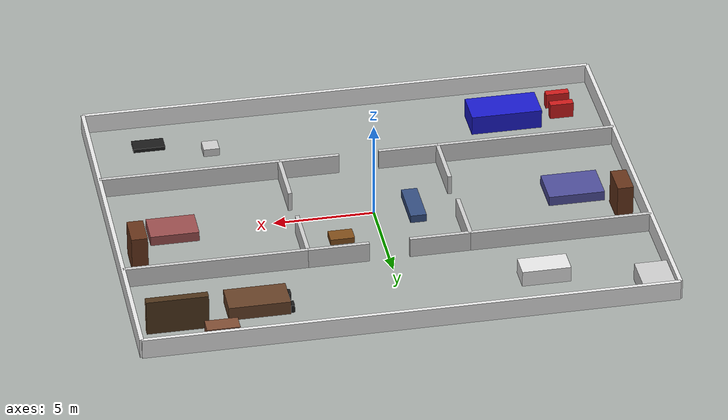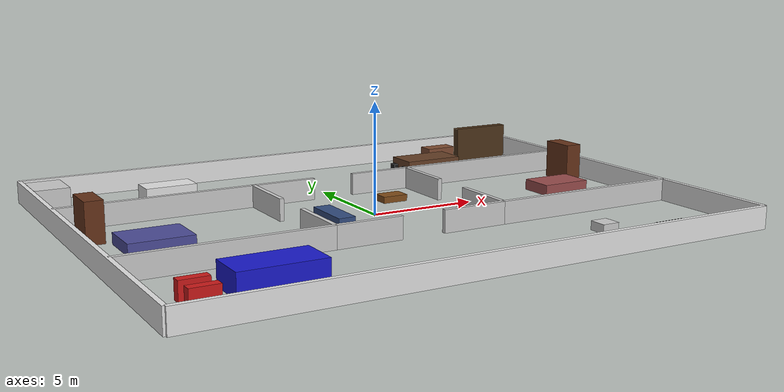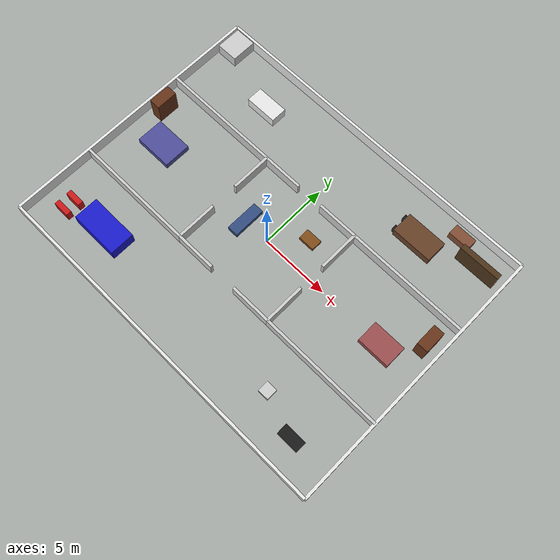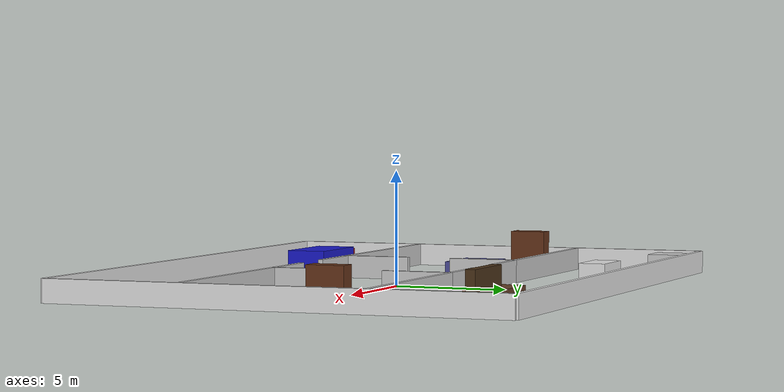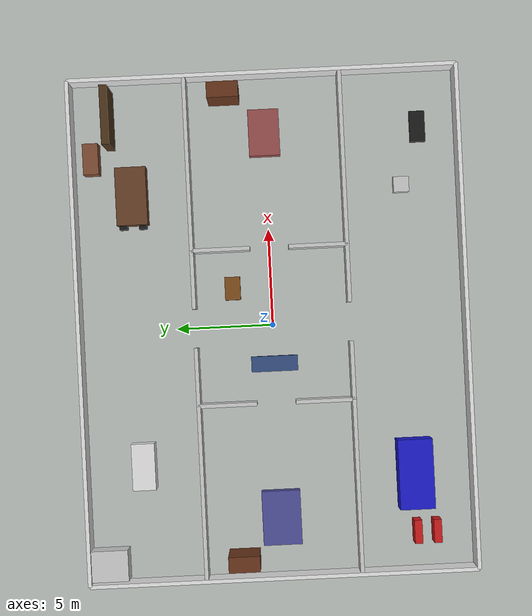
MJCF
<mujoco model="clean_home_environment">
    <asset>
        <texture name="skybox" type="skybox" builtin="gradient" rgb1=".3 .5 .7" rgb2="0 0 0" width="512" height="512"/>
        <texture name="grid" type="2d" builtin="checker" rgb1=".1 .2 .3" rgb2=".2 .3 .4" width="300" height="300" mark="edge" markrgb=".8 .8 .8"/>
        <material name="grid" texture="grid" texrepeat="1 1" texuniform="true"/>
    </asset>

    <worldbody>
        <!-- EXTERIOR WALLS (26x20m) -->
        <geom name="wall_n" type="box" pos="0 10 0.5" size="13 0.1 0.5" rgba="0.9 0.9 0.9 1"/>
        <geom name="wall_s" type="box" pos="0 -10 0.5" size="13 0.1 0.5" rgba="0.9 0.9 0.9 1"/>
        <geom name="wall_e" type="box" pos="13 0 0.5" size="0.1 10 0.5" rgba="0.9 0.9 0.9 1"/>
        <geom name="wall_w" type="box" pos="-13 0 0.5" size="0.1 10 0.5" rgba="0.9 0.9 0.9 1"/>

        <!-- INTERIOR WALLS WITH GATES -->
        <geom name="wall_lv_w_1" type="box" pos="-4 -2.5 0.5" size="0.1 1.5 0.5" rgba="0.8 0.8 0.8 1"/>
        <geom name="wall_lv_w_2" type="box" pos="-4 2.5 0.5" size="0.1 1.5 0.5" rgba="0.8 0.8 0.8 1"/>
        <geom name="wall_lv_e_1" type="box" pos="4 -2.5 0.5" size="0.1 1.5 0.5" rgba="0.8 0.8 0.8 1"/>
        <geom name="wall_lv_e_2" type="box" pos="4 2.5 0.5" size="0.1 1.5 0.5" rgba="0.8 0.8 0.8 1"/>
        <geom name="wall_lv_n_1" type="box" pos="-2.5 4 0.5" size="1.5 0.1 0.5" rgba="0.8 0.8 0.8 1"/>
        <geom name="wall_lv_n_2" type="box" pos="2.5 4 0.5" size="1.5 0.1 0.5" rgba="0.8 0.8 0.8 1"/>
        <geom name="wall_lv_s_1" type="box" pos="-2.5 -4 0.5" size="1.5 0.1 0.5" rgba="0.8 0.8 0.8 1"/>
        <geom name="wall_lv_s_2" type="box" pos="2.5 -4 0.5" size="1.5 0.1 0.5" rgba="0.8 0.8 0.8 1"/>

        <geom name="wall_kit_h" type="box" pos="-8.5 4 0.5" size="4.5 0.1 0.5" rgba="0.8 0.8 0.8 1"/>
        <geom name="wall_lib_h" type="box" pos="8.5 4 0.5" size="4.5 0.1 0.5" rgba="0.8 0.8 0.8 1"/>
        <geom name="wall_gym_h" type="box" pos="8.5 -4 0.5" size="4.5 0.1 0.5" rgba="0.8 0.8 0.8 1"/>
        <geom name="wall_master_h" type="box" pos="-8.5 -4 0.5" size="4.5 0.1 0.5" rgba="0.8 0.8 0.8 1"/>

        <!-- CLEAN ARRANGEMENT OF FURNITURE -->

        <!-- 1. LIVING ROOM -->
        <body name="sofa" pos="-2 0 0.2"><geom type="box" size="0.4 1.2 0.2" rgba="0.2 0.3 0.5 1"/></body>
        <body name="lv_table" pos="2 2 0.15"><geom type="box" size="0.6 0.4 0.15" rgba="0.5 0.3 0.1 1"/></body>

        <!-- 2. KITCHEN (Top-Left) -->
        <body name="island" pos="-7 7 0.4"><geom type="box" size="1.2 0.6 0.4" rgba="0.9 0.9 0.9 1"/></body>
        <body name="kitchen_counter" pos="-12 9 0.45"><geom type="box" size="0.8 1.0 0.45" rgba="0.8 0.8 0.8 1"/></body>

        <!-- 3. DINING ROOM (Top-Right) -->
        <body name="dining_table" pos="7 7 0.35"><geom type="box" size="1.5 0.8 0.35" rgba="0.4 0.25 0.15 1"/></body>
        <body name="chair_d1" pos="5.5 7.5 0.2"><geom type="box" size="0.2 0.2 0.2" rgba="0.1 0.1 0.1 1"/></body>
        <body name="chair_d2" pos="5.5 6.5 0.2"><geom type="box" size="0.2 0.2 0.2" rgba="0.1 0.1 0.1 1"/></body>

        <!-- 4. MASTER BEDROOM (West) -->
        <body name="bed_m" pos="-10 0 0.25"><geom type="box" size="1.4 1.0 0.25" rgba="0.3 0.3 0.6 1"/></body>
        <body name="almirah_m" pos="-12 2 0.9"><geom type="box" size="0.4 0.8 0.9" rgba="0.4 0.2 0.1 1"/></body>

        <!-- 5. GUEST BEDROOM (East) -->
        <body name="bed_g" pos="10 0 0.25"><geom type="box" size="1.2 0.8 0.25" rgba="0.6 0.3 0.3 1"/></body>
        <body name="almirah_g" pos="12 2 0.9"><geom type="box" size="0.4 0.8 0.9" rgba="0.4 0.2 0.1 1"/></body>

        <!-- 6. LIBRARY (North-East) -->
        <body name="shelf_1" pos="11 8 0.9"><geom type="box" size="1.5 0.2 0.9" rgba="0.3 0.2 0.1 1"/></body>
        <body name="study_desk" pos="9 9 0.35"><geom type="box" size="0.8 0.4 0.35" rgba="0.5 0.3 0.2 1"/></body>

        <!-- 7. GARAGE (South-West) -->
        <body name="car_1" pos="-8 -7 0.5"><geom type="box" size="1.8 0.9 0.5" rgba="0.1 0.1 0.8 1"/></body>
        <body name="bike_1" pos="-11 -7 0.4"><geom type="box" size="0.6 0.2 0.4" rgba="0.8 0.1 0.1 1"/></body>
        <body name="bike_2" pos="-11 -8 0.4"><geom type="box" size="0.6 0.2 0.4" rgba="0.8 0.1 0.1 1"/></body>

        <!-- 8. GYM / STORAGE (South-East) -->
        <body name="treadmill" pos="10 -8 0.1"><geom type="box" size="0.8 0.4 0.1" rgba="0.1 0.1 0.1 1"/></body>
        <body name="storage_box" pos="7 -7 0.2"><geom type="box" size="0.4 0.4 0.2" rgba="0.8 0.8 0.8 1"/></body>

    </worldbody>
</mujoco>
